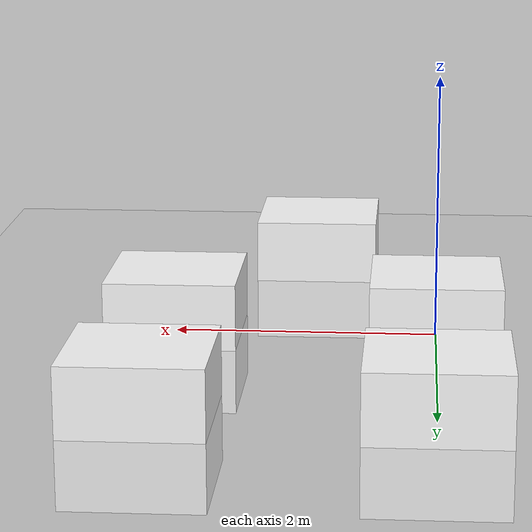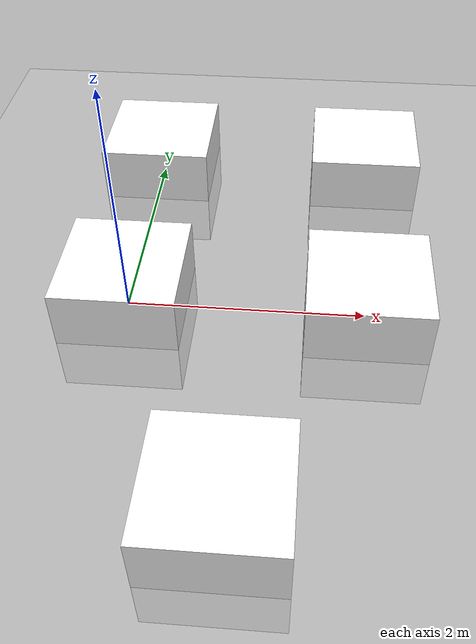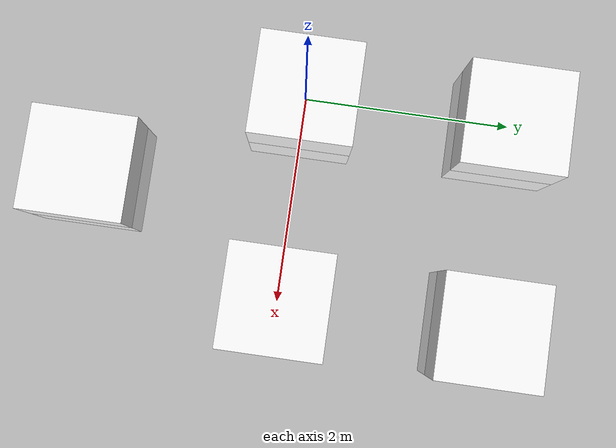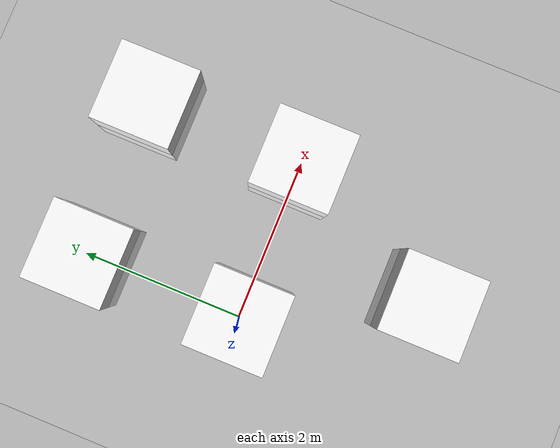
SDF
<?xml version="1.0" ?>
<sdf version="1.6">
  <world name="default">

    <!-- Add ground plane -->
    <include>
      <uri>model://ground_plane</uri>
    </include>

    <!-- Add sun so we can see -->
    <include>
      <uri>model://sun</uri>
    </include>

    <!-- Add 5 ArUco tags in a square path -->
    <include>
      <uri>model://aruco_visual_marker_0</uri>
      <pose>2 0 0 0 0 0</pose>   <!-- tag at (2, 0) -->
    </include>

    <include>
      <uri>model://aruco_visual_marker_1</uri>
      <pose>2 2 0 0 0 1.57</pose> <!-- tag at (2, 2), rotated 90° -->
    </include>

    <include>
      <uri>model://aruco_visual_marker_0</uri>
      <pose>0 2 0 0 0 3.14</pose> <!-- tag at (0, 2), rotated 180° -->
    </include>

    <include>
      <uri>model://aruco_visual_marker_1</uri>
      <pose>0 0 0 0 0 -1.57</pose> <!-- tag at (0, 0), rotated -90° -->
    </include>

    <include>
      <uri>model://aruco_visual_marker_0</uri>
      <pose>1 -2 0 0 0 0</pose> <!-- extra tag somewhere else -->
    </include>

  </world>
</sdf>

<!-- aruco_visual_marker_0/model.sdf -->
<sdf version='1.5'>
  <model name='aruco_visual_marker_0'>

    <link name='marker'>
      <pose frame=''>0 0 0 0 0 0</pose>
      <visual name='visual'>
        <geometry>
          <box>
            <size>1 1 1</size>
          </box>
        </geometry>
        <material>
          <script>
            <uri>model://aruco_visual_marker_0/materials/scripts</uri>
            <uri>model://aruco_visual_marker_0/materials/textures</uri>
            <name>ArucoVisualMarker0/Marker</name>
          </script>
          <ambient>1 1 1 1</ambient>
          <diffuse>1 1 1 1</diffuse>
          <specular>0 0 0 1</specular>
          <emissive>1 1 1 0</emissive>
          <shader type='vertex'>
            <normal_map>__default__</normal_map>
          </shader>
        </material>
        <pose frame=''>0 0 0 0 -0 0</pose>
        <cast_shadows>1</cast_shadows>
        <transparency>0</transparency>
      </visual>
      <collision name='collision'>
        <laser_retro>0</laser_retro>
        <max_contacts>10</max_contacts>
        <pose frame=''>0 0 0 0 -0 0</pose>
        <geometry>
          <box>
            <size>1 1 1</size>
          </box>
        </geometry>
      </collision>
    </link>

    <static>1</static>
    <allow_auto_disable>1</allow_auto_disable>

  </model>
</sdf>

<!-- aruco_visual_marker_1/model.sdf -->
<sdf version='1.5'>
  <model name='aruco_visual_marker_1'>

    <link name='marker'>
      <pose frame=''>0 0 0 0 0 0</pose>
      <visual name='visual'>
        <geometry>
          <box>
            <size>1 1 1</size>
          </box>
        </geometry>
        <material>
          <script>
            <uri>model://aruco_visual_marker_1/materials/scripts</uri>
            <uri>model://aruco_visual_marker_1/materials/textures</uri>
            <name>ArucoVisualMarker1/Marker</name>
          </script>
          <ambient>1 1 1 1</ambient>
          <diffuse>1 1 1 1</diffuse>
          <specular>0 0 0 1</specular>
          <emissive>1 1 1 0</emissive>
          <shader type='vertex'>
            <normal_map>__default__</normal_map>
          </shader>
        </material>
        <pose frame=''>0 0 0 0 -0 0</pose>
        <cast_shadows>1</cast_shadows>
        <transparency>0</transparency>
      </visual>
      <collision name='collision'>
        <laser_retro>0</laser_retro>
        <max_contacts>10</max_contacts>
        <pose frame=''>0 0 0 0 -0 0</pose>
        <geometry>
          <box>
            <size>1 1 1</size>
          </box>
        </geometry>
      </collision>
    </link>

    <static>1</static>
    <allow_auto_disable>1</allow_auto_disable>

  </model>
</sdf>
